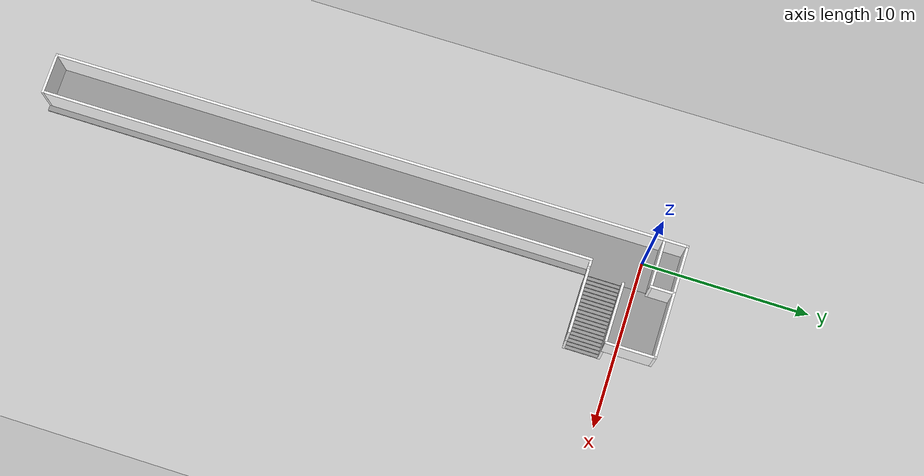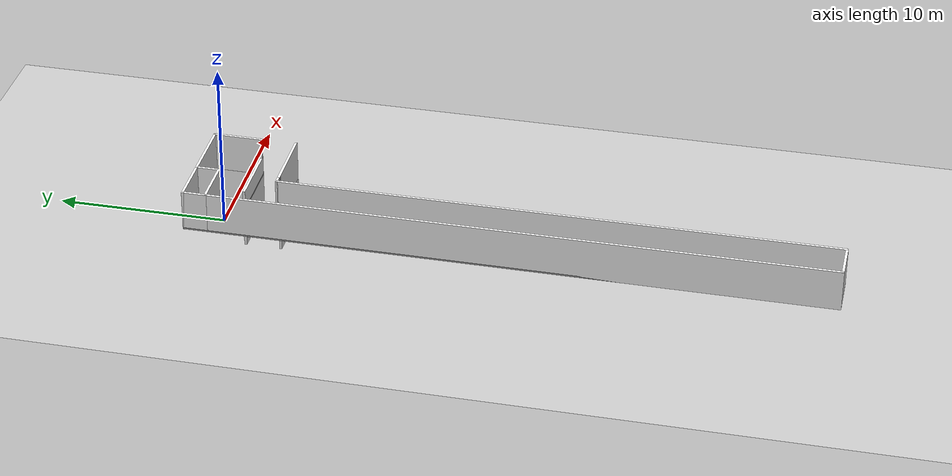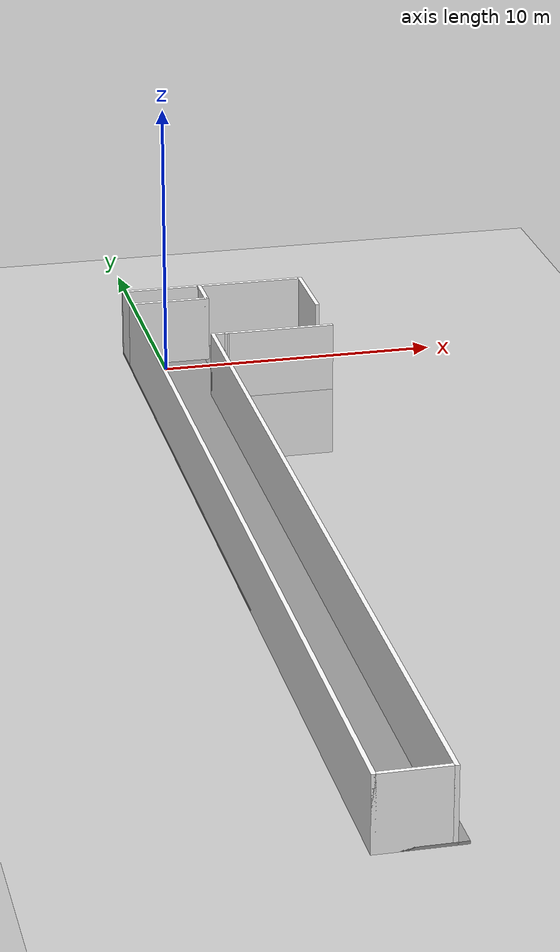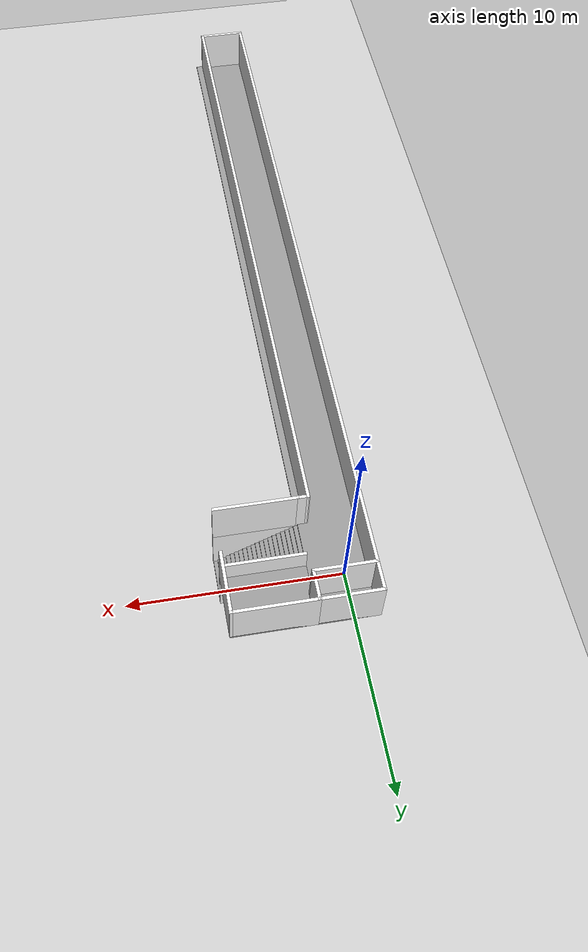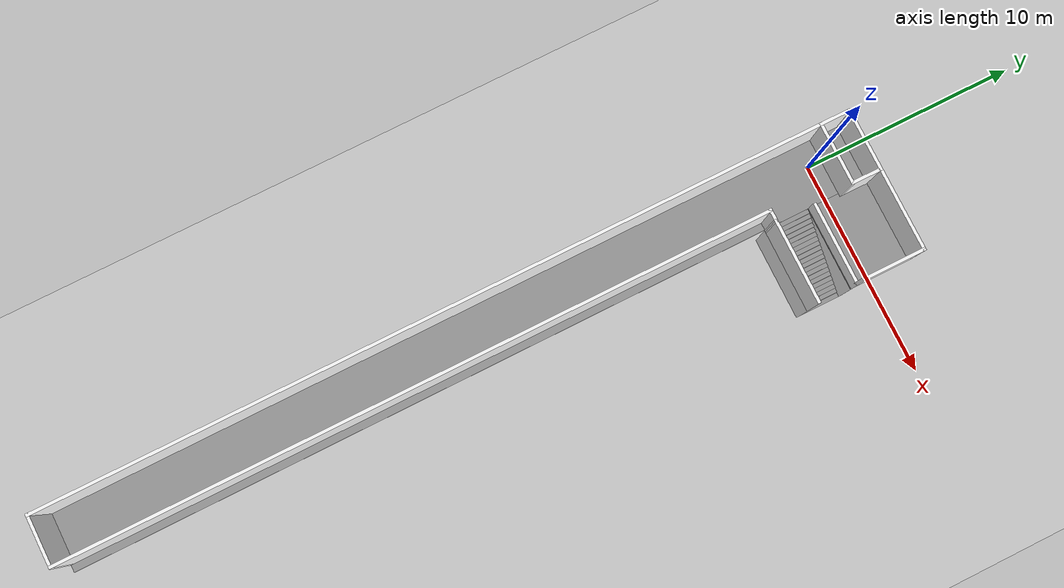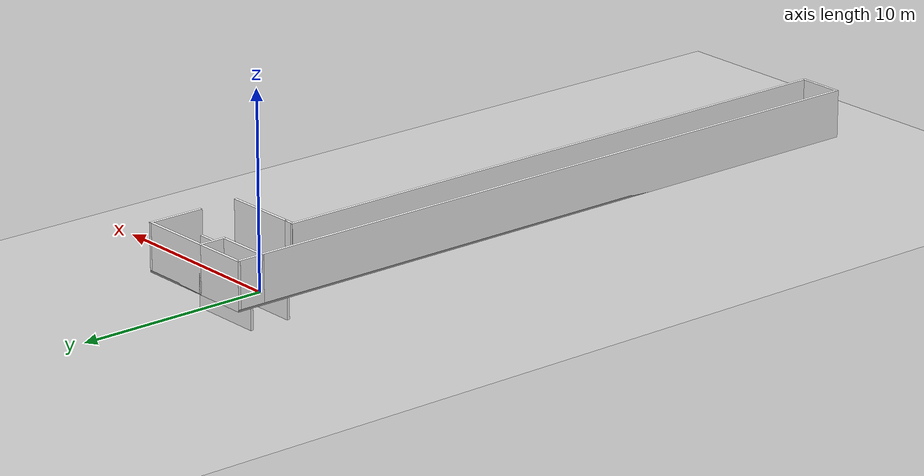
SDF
<sdf version='1.4'>
  <world name='default'>
    <!-- A global light source -->
    <include>
      <uri>model://sun</uri>
    </include>

    <!-- A ground plane -->
    <include>
      <uri>model://ground_plane</uri>
        <pose>0 0 -2.6 0 0 0</pose>
    </include>

    <physics type="ode">
      <real_time_update_rate>1000.0</real_time_update_rate>
      <max_step_size>0.001</max_step_size>
      <real_time_factor>1</real_time_factor>
      <ode>
        <solver>
          <type>quick</type>
          <iters>150</iters>
          <precon_iters>0</precon_iters>
          <sor>1.400000</sor>
          <use_dynamic_moi_rescaling>1</use_dynamic_moi_rescaling>
        </solver>
        <constraints>
          <cfm>0.00001</cfm>
          <erp>0.2</erp>
          <contact_max_correcting_vel>2000.000000</contact_max_correcting_vel>
          <contact_surface_layer>0.01000</contact_surface_layer>
        </constraints>
      </ode>
    </physics>

    <!-- Load world -->
    <include>
      <uri>model://Building7_4th_Floor</uri>
        <pose>2.2 -17 -2.6 0 0 0</pose>
    </include>

    <scene>
      <ambient>0.4 0.4 0.4 1</ambient>
      <background>0.7 0.7 0.7 1</background>
      <shadows>true</shadows>
    </scene>

    <gui fullscreen='1'>
      <camera name='user_camera'>
        <pose>0 -3 8 0 1.5708 0</pose>
        <view_controller>orbit</view_controller>
      </camera>
    </gui>
  </world>
</sdf>

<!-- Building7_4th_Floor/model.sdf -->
<sdf version='1.7'>
  <model name='Building7_4th_Floor'>
    <pose>0 0 0 0 0 0</pose>
    <link name='Wall_1'>
      <collision name='Wall_1_Collision'>
        <geometry>
          <box>
            <size>37 0.15 2.5</size>
          </box>
        </geometry>
        <pose>0 0 1.25 0 -0 0</pose>
      </collision>
      <visual name='Wall_1_Visual'>
        <pose>0 0 1.25 0 -0 0</pose>
        <geometry>
          <box>
            <size>37 0.15 2.5</size>
          </box>
        </geometry>
        <material>
			 <script>
            <name>Wand_beige</name>
          </script>
          <ambient>1 1 1 1</ambient>
        </material>
        <meta>
          <layer>1</layer>
        </meta>
      </visual>
      <pose>-3.35009 -0.675 2.5 0 -0 -1.5708</pose>
    </link>
    <link name='Wall_2'>
      <collision name='Wall_2_Collision'>
        <geometry>
          <box>
            <size>2.5 0.15 2.5</size>
          </box>
        </geometry>
        <pose>0 0 1.25 0 -0 0</pose>
      </collision>
      <visual name='Wall_2_Visual'>
        <pose>0 0 1.25 0 -0 0</pose>
        <geometry>
          <box>
            <size>2.5 0.15 2.5</size>
          </box>
        </geometry>
        <material>
          <script>
            <name>Wand_beige</name>
          </script>
          <ambient>1 1 1 1</ambient>
        </material>
        <meta>
          <layer>1</layer>
        </meta>
      </visual>
      <pose>-2.17509 -19.1 2.5 0 -0 0</pose>
    </link>
    <link name='Wall_3'>
      <collision name='Wall_3_Collision'>
        <geometry>
          <box>
            <size>33.341 0.15 2.5</size>
          </box>
        </geometry>
        <pose>0 0 1.25 0 -0 0</pose>
      </collision>
      <visual name='Wall_3_Visual'>
        <pose>0 0 1.25 0 -0 0</pose>
        <geometry>
          <box>
            <size>33.341 0.15 2.5</size>
          </box>
        </geometry>
        <material>
          <script>
            <name>Wand_beige</name>
          </script>
          <ambient>1 1 1 1</ambient>
        </material>
        <meta>
          <layer>1</layer>
        </meta>
      </visual>
      <pose>-1.00009 -2.5045 2.5 0 -0 -1.5708</pose>
    </link>
    <link name='Wall_4'>
      <collision name='Wall_4_Collision'>
        <geometry>
          <box>
            <size>0.65 0.15 2.5</size>
          </box>
        </geometry>
        <pose>0 0 1.25 0 -0 0</pose>
      </collision>
      <visual name='Wall_4_Visual'>
        <pose>0 0 1.25 0 -0 0</pose>
        <geometry>
          <box>
            <size>0.65 0.15 2.5</size>
          </box>
        </geometry>
        <material>
          <script>
            <name>Wand_beige</name>
          </script>
          <ambient>1 1 1 1</ambient>
        </material>
        <meta>
          <layer>1</layer>
        </meta>
      </visual>
      <pose>-0.749999 14.0908 2.5 0 -0 3.14087</pose>
    </link>
    <link name='Wall_5'>
      <collision name='Wall_5_Collision'>
        <geometry>
          <box>
            <size>4 0.15 1.2</size>
          </box>
        </geometry>
        <pose>0 0 0.6 0 -0 0</pose>
      </collision>
      <visual name='Wall_5_Visual'>
        <pose>0 0 0.6 0 -0 0</pose>
        <geometry>
          <box>
            <size>4 0.15 1.2</size>
          </box>
        </geometry>
        <material>
          <script>
            <name>Wand_beige</name>
          </script>
          <ambient>1 1 1 1</ambient>
        </material>
        <meta>
          <layer>1</layer>
        </meta>
      </visual>
      <pose>1.42491 16.25 2.5 0 -0 0</pose>
    </link>
    <link name='Wall_6'>
      <collision name='Wall_6_Collision'>
        <geometry>
          <box>
            <size>3 0.15 2.5</size>
          </box>
        </geometry>
        <pose>0 0 1.25 0 -0 0</pose>
      </collision>
      <visual name='Wall_6_Visual'>
        <pose>0 0 1.25 0 -0 0</pose>
        <geometry>
          <box>
            <size>3 0.15 2.5</size>
          </box>
        </geometry>
        <material>
          <script>
            <name>Wand_beige</name>
          </script>
          <ambient>1 1 1 1</ambient>
        </material>
        <meta>
          <layer>1</layer>
        </meta>
      </visual>
      <pose>3.34991 17.675 2.5 0 -0 1.5708</pose>
    </link>
    <link name='Wall_7'>
      <collision name='Wall_7_Collision'>
        <geometry>
          <box>
            <size>4 0.15 2.5</size>
          </box>
        </geometry>
        <pose>0 0 1.25 0 -0 0</pose>
      </collision>
      <visual name='Wall_7_Visual'>
        <pose>0 0 1.25 0 -0 0</pose>
        <geometry>
          <box>
            <size>4 0.15 2.5</size>
          </box>
        </geometry>
        <material>
          <script>
            <name>Wand_beige</name>
          </script>
          <ambient>1 1 1 1</ambient>
        </material>
        <meta>
          <layer>1</layer>
        </meta>
      </visual>
      <pose>1.42491 19.1 2.5 0 -0 3.14159</pose>
    </link>
    <link name='Wall_8'>
      <collision name='Wall_8_Collision'>
        <geometry>
          <box>
            <size>1.5 0.15 2.5</size>
          </box>
        </geometry>
        <pose>0 0 1.25 0 -0 0</pose>
      </collision>
      <visual name='Wall_8_Visual'>
        <pose>0 0 1.25 0 -0 0</pose>
        <geometry>
          <box>
            <size>1.5 0.15 2.5</size>
          </box>
        </geometry>
        <material>
          <script>
            <name>Wand_beige</name>
          </script>
          <ambient>1 1 1 1</ambient>
        </material>
        <meta>
          <layer>1</layer>
        </meta>
      </visual>
      <pose>-0.500093 18.425 2.5 0 -0 -1.5708</pose>
    </link>
    <link name='Wall_9'>
      <collision name='Wall_9_Collision'>
        <geometry>
          <box>
            <size>3 0.15 2.5</size>
          </box>
        </geometry>
        <pose>0 0 1.25 0 -0 0</pose>
      </collision>
      <visual name='Wall_9_Visual'>
        <pose>0 0 1.25 0 -0 0</pose>
        <geometry>
          <box>
            <size>3 0.15 2.5</size>
          </box>
        </geometry>
        <material>
          <script>
            <name>Wand_beige</name>
          </script>
          <ambient>1 1 1 1</ambient>
        </material>
        <meta>
          <layer>1</layer>
        </meta>
      </visual>
      <pose>-1.92509 17.75 2.5 0 -0 3.14159</pose>
    </link>
    <link name='Floor_0'>
      <pose>-9e-05 1e-06 2.5 0 -0 0</pose>
      <visual name='Floor_0_Visual_0'>
        <pose>-2.0038 0 0.05 0 -0 0</pose>
        <geometry>
          <box>
            <size>2.84242 38.35 0.1</size>
          </box>
        </geometry>
        <material>
          <script>
            <uri>file://media/materials/scripts/gazebo.material</uri>
            <name>Gazebo/Grey</name>
          </script>
          <ambient>1 1 1 1</ambient>
        </material>
        <meta>
          <layer>1</layer>
        </meta>
      </visual>
      <collision name='Floor_0_Collision_0'>
        <geometry>
          <box>
            <size>2.84242 38.35 0.1</size>
          </box>
        </geometry>
        <pose>-2.0038 0 0.05 0 -0 0</pose>
      </collision>
      <visual name='Floor_0_Visual_3'>
        <pose>1.41741 17.673 0.05 0 -0 0</pose>
        <geometry>
          <box>
            <size>4 3.004 0.1</size>
          </box>
        </geometry>
        <material>
          <script>
            <uri>file://media/materials/scripts/gazebo.material</uri>
            <name>Gazebo/Grey</name>
          </script>
          <ambient>1 1 1 1</ambient>
        </material>
        <meta>
          <layer>1</layer>
        </meta>
      </visual>
      <collision name='Floor_0_Collision_3'>
        <geometry>
          <box>
            <size>4 3.004 0.1</size>
          </box>
        </geometry>
        <pose>1.41741 17.673 0.05 0 -0 0</pose>
      </collision>
    </link>
    <link name='Stairs_3'>
      <visual name='Stairs_3_Visual_0'>
        <pose>3.31732 15.171 0.0625 0 0 -1.5708</pose>
        <geometry>
          <box>
            <size>2 0.2 0.125</size>
          </box>
        </geometry>
        <material>
          <script>
            <uri>file://media/materials/scripts/gazebo.material</uri>
            <name>Gazebo/Grey</name>
          </script>
          <ambient>1 1 1 1</ambient>
        </material>
        <meta>
          <layer>0</layer>
        </meta>
      </visual>
      <collision name='Stairs_3_Collision_0'>
        <geometry>
          <box>
            <size>2 0.2 0.125</size>
          </box>
        </geometry>
        <pose>3.31732 15.171 0.0625 0 0 -1.5708</pose>
      </collision>
      <visual name='Stairs_3_Visual_1'>
        <pose>3.11732 15.171 0.1875 0 0 -1.5708</pose>
        <geometry>
          <box>
            <size>2 0.2 0.125</size>
          </box>
        </geometry>
        <material>
          <script>
            <uri>file://media/materials/scripts/gazebo.material</uri>
            <name>Gazebo/Grey</name>
          </script>
          <ambient>1 1 1 1</ambient>
        </material>
        <meta>
          <layer>0</layer>
        </meta>
      </visual>
      <collision name='Stairs_3_Collision_1'>
        <geometry>
          <box>
            <size>2 0.2 0.125</size>
          </box>
        </geometry>
        <pose>3.11732 15.171 0.1875 0 0 -1.5708</pose>
      </collision>
      <visual name='Stairs_3_Visual_2'>
        <pose>2.91732 15.171 0.3125 0 0 -1.5708</pose>
        <geometry>
          <box>
            <size>2 0.2 0.125</size>
          </box>
        </geometry>
        <material>
          <script>
            <uri>file://media/materials/scripts/gazebo.material</uri>
            <name>Gazebo/Grey</name>
          </script>
          <ambient>1 1 1 1</ambient>
        </material>
        <meta>
          <layer>0</layer>
        </meta>
      </visual>
      <collision name='Stairs_3_Collision_2'>
        <geometry>
          <box>
            <size>2 0.2 0.125</size>
          </box>
        </geometry>
        <pose>2.91732 15.171 0.3125 0 0 -1.5708</pose>
      </collision>
      <visual name='Stairs_3_Visual_3'>
        <pose>2.71732 15.171 0.4375 0 0 -1.5708</pose>
        <geometry>
          <box>
            <size>2 0.2 0.125</size>
          </box>
        </geometry>
        <material>
          <script>
            <uri>file://media/materials/scripts/gazebo.material</uri>
            <name>Gazebo/Grey</name>
          </script>
          <ambient>1 1 1 1</ambient>
        </material>
        <meta>
          <layer>0</layer>
        </meta>
      </visual>
      <collision name='Stairs_3_Collision_3'>
        <geometry>
          <box>
            <size>2 0.2 0.125</size>
          </box>
        </geometry>
        <pose>2.71732 15.171 0.4375 0 0 -1.5708</pose>
      </collision>
      <visual name='Stairs_3_Visual_4'>
        <pose>2.51732 15.171 0.5625 0 0 -1.5708</pose>
        <geometry>
          <box>
            <size>2 0.2 0.125</size>
          </box>
        </geometry>
        <material>
          <script>
            <uri>file://media/materials/scripts/gazebo.material</uri>
            <name>Gazebo/Grey</name>
          </script>
          <ambient>1 1 1 1</ambient>
        </material>
        <meta>
          <layer>0</layer>
        </meta>
      </visual>
      <collision name='Stairs_3_Collision_4'>
        <geometry>
          <box>
            <size>2 0.2 0.125</size>
          </box>
        </geometry>
        <pose>2.51732 15.171 0.5625 0 0 -1.5708</pose>
      </collision>
      <visual name='Stairs_3_Visual_5'>
        <pose>2.31732 15.171 0.6875 0 0 -1.5708</pose>
        <geometry>
          <box>
            <size>2 0.2 0.125</size>
          </box>
        </geometry>
        <material>
          <script>
            <uri>file://media/materials/scripts/gazebo.material</uri>
            <name>Gazebo/Grey</name>
          </script>
          <ambient>1 1 1 1</ambient>
        </material>
        <meta>
          <layer>0</layer>
        </meta>
      </visual>
      <collision name='Stairs_3_Collision_5'>
        <geometry>
          <box>
            <size>2 0.2 0.125</size>
          </box>
        </geometry>
        <pose>2.31732 15.171 0.6875 0 0 -1.5708</pose>
      </collision>
      <visual name='Stairs_3_Visual_6'>
        <pose>2.11732 15.171 0.8125 0 0 -1.5708</pose>
        <geometry>
          <box>
            <size>2 0.2 0.125</size>
          </box>
        </geometry>
        <material>
          <script>
            <uri>file://media/materials/scripts/gazebo.material</uri>
            <name>Gazebo/Grey</name>
          </script>
          <ambient>1 1 1 1</ambient>
        </material>
        <meta>
          <layer>0</layer>
        </meta>
      </visual>
      <collision name='Stairs_3_Collision_6'>
        <geometry>
          <box>
            <size>2 0.2 0.125</size>
          </box>
        </geometry>
        <pose>2.11732 15.171 0.8125 0 0 -1.5708</pose>
      </collision>
      <visual name='Stairs_3_Visual_7'>
        <pose>1.91732 15.171 0.9375 0 0 -1.5708</pose>
        <geometry>
          <box>
            <size>2 0.2 0.125</size>
          </box>
        </geometry>
        <material>
          <script>
            <uri>file://media/materials/scripts/gazebo.material</uri>
            <name>Gazebo/Grey</name>
          </script>
          <ambient>1 1 1 1</ambient>
        </material>
        <meta>
          <layer>0</layer>
        </meta>
      </visual>
      <collision name='Stairs_3_Collision_7'>
        <geometry>
          <box>
            <size>2 0.2 0.125</size>
          </box>
        </geometry>
        <pose>1.91732 15.171 0.9375 0 0 -1.5708</pose>
      </collision>
      <visual name='Stairs_3_Visual_8'>
        <pose>1.71732 15.171 1.0625 0 0 -1.5708</pose>
        <geometry>
          <box>
            <size>2 0.2 0.125</size>
          </box>
        </geometry>
        <material>
          <script>
            <uri>file://media/materials/scripts/gazebo.material</uri>
            <name>Gazebo/Grey</name>
          </script>
          <ambient>1 1 1 1</ambient>
        </material>
        <meta>
          <layer>0</layer>
        </meta>
      </visual>
      <collision name='Stairs_3_Collision_8'>
        <geometry>
          <box>
            <size>2 0.2 0.125</size>
          </box>
        </geometry>
        <pose>1.71732 15.171 1.0625 0 0 -1.5708</pose>
      </collision>
      <visual name='Stairs_3_Visual_9'>
        <pose>1.51732 15.171 1.1875 0 0 -1.5708</pose>
        <geometry>
          <box>
            <size>2 0.2 0.125</size>
          </box>
        </geometry>
        <material>
          <script>
            <uri>file://media/materials/scripts/gazebo.material</uri>
            <name>Gazebo/Grey</name>
          </script>
          <ambient>1 1 1 1</ambient>
        </material>
        <meta>
          <layer>0</layer>
        </meta>
      </visual>
      <collision name='Stairs_3_Collision_9'>
        <geometry>
          <box>
            <size>2 0.2 0.125</size>
          </box>
        </geometry>
        <pose>1.51732 15.171 1.1875 0 0 -1.5708</pose>
      </collision>
      <visual name='Stairs_3_Visual_10'>
        <pose>1.31732 15.171 1.3125 0 0 -1.5708</pose>
        <geometry>
          <box>
            <size>2 0.2 0.125</size>
          </box>
        </geometry>
        <material>
          <script>
            <uri>file://media/materials/scripts/gazebo.material</uri>
            <name>Gazebo/Grey</name>
          </script>
          <ambient>1 1 1 1</ambient>
        </material>
        <meta>
          <layer>0</layer>
        </meta>
      </visual>
      <collision name='Stairs_3_Collision_10'>
        <geometry>
          <box>
            <size>2 0.2 0.125</size>
          </box>
        </geometry>
        <pose>1.31732 15.171 1.3125 0 0 -1.5708</pose>
      </collision>
      <visual name='Stairs_3_Visual_11'>
        <pose>1.11732 15.171 1.4375 0 0 -1.5708</pose>
        <geometry>
          <box>
            <size>2 0.2 0.125</size>
          </box>
        </geometry>
        <material>
          <script>
            <uri>file://media/materials/scripts/gazebo.material</uri>
            <name>Gazebo/Grey</name>
          </script>
          <ambient>1 1 1 1</ambient>
        </material>
        <meta>
          <layer>0</layer>
        </meta>
      </visual>
      <collision name='Stairs_3_Collision_11'>
        <geometry>
          <box>
            <size>2 0.2 0.125</size>
          </box>
        </geometry>
        <pose>1.11732 15.171 1.4375 0 0 -1.5708</pose>
      </collision>
      <visual name='Stairs_3_Visual_12'>
        <pose>0.917324 15.171 1.5625 0 0 -1.5708</pose>
        <geometry>
          <box>
            <size>2 0.2 0.125</size>
          </box>
        </geometry>
        <material>
          <script>
            <uri>file://media/materials/scripts/gazebo.material</uri>
            <name>Gazebo/Grey</name>
          </script>
          <ambient>1 1 1 1</ambient>
        </material>
        <meta>
          <layer>0</layer>
        </meta>
      </visual>
      <collision name='Stairs_3_Collision_12'>
        <geometry>
          <box>
            <size>2 0.2 0.125</size>
          </box>
        </geometry>
        <pose>0.917324 15.171 1.5625 0 0 -1.5708</pose>
      </collision>
      <visual name='Stairs_3_Visual_13'>
        <pose>0.717324 15.171 1.6875 0 0 -1.5708</pose>
        <geometry>
          <box>
            <size>2 0.2 0.125</size>
          </box>
        </geometry>
        <material>
          <script>
            <uri>file://media/materials/scripts/gazebo.material</uri>
            <name>Gazebo/Grey</name>
          </script>
          <ambient>1 1 1 1</ambient>
        </material>
        <meta>
          <layer>0</layer>
        </meta>
      </visual>
      <collision name='Stairs_3_Collision_13'>
        <geometry>
          <box>
            <size>2 0.2 0.125</size>
          </box>
        </geometry>
        <pose>0.717324 15.171 1.6875 0 0 -1.5708</pose>
      </collision>
      <visual name='Stairs_3_Visual_14'>
        <pose>0.517324 15.171 1.8125 0 0 -1.5708</pose>
        <geometry>
          <box>
            <size>2 0.2 0.125</size>
          </box>
        </geometry>
        <material>
          <script>
            <uri>file://media/materials/scripts/gazebo.material</uri>
            <name>Gazebo/Grey</name>
          </script>
          <ambient>1 1 1 1</ambient>
        </material>
        <meta>
          <layer>0</layer>
        </meta>
      </visual>
      <collision name='Stairs_3_Collision_14'>
        <geometry>
          <box>
            <size>2 0.2 0.125</size>
          </box>
        </geometry>
        <pose>0.517324 15.171 1.8125 0 0 -1.5708</pose>
      </collision>
      <visual name='Stairs_3_Visual_15'>
        <pose>0.317324 15.171 1.9375 0 0 -1.5708</pose>
        <geometry>
          <box>
            <size>2 0.2 0.125</size>
          </box>
        </geometry>
        <material>
          <script>
            <uri>file://media/materials/scripts/gazebo.material</uri>
            <name>Gazebo/Grey</name>
          </script>
          <ambient>1 1 1 1</ambient>
        </material>
        <meta>
          <layer>0</layer>
        </meta>
      </visual>
      <collision name='Stairs_3_Collision_15'>
        <geometry>
          <box>
            <size>2 0.2 0.125</size>
          </box>
        </geometry>
        <pose>0.317324 15.171 1.9375 0 0 -1.5708</pose>
      </collision>
      <visual name='Stairs_3_Visual_16'>
        <pose>0.117324 15.171 2.0625 0 0 -1.5708</pose>
        <geometry>
          <box>
            <size>2 0.2 0.125</size>
          </box>
        </geometry>
        <material>
          <script>
            <uri>file://media/materials/scripts/gazebo.material</uri>
            <name>Gazebo/Grey</name>
          </script>
          <ambient>1 1 1 1</ambient>
        </material>
        <meta>
          <layer>0</layer>
        </meta>
      </visual>
      <collision name='Stairs_3_Collision_16'>
        <geometry>
          <box>
            <size>2 0.2 0.125</size>
          </box>
        </geometry>
        <pose>0.117324 15.171 2.0625 0 0 -1.5708</pose>
      </collision>
      <visual name='Stairs_3_Visual_17'>
        <pose>-0.082676 15.171 2.1875 0 0 -1.5708</pose>
        <geometry>
          <box>
            <size>2 0.2 0.125</size>
          </box>
        </geometry>
        <material>
          <script>
            <uri>file://media/materials/scripts/gazebo.material</uri>
            <name>Gazebo/Grey</name>
          </script>
          <ambient>1 1 1 1</ambient>
        </material>
        <meta>
          <layer>0</layer>
        </meta>
      </visual>
      <collision name='Stairs_3_Collision_17'>
        <geometry>
          <box>
            <size>2 0.2 0.125</size>
          </box>
        </geometry>
        <pose>-0.082676 15.171 2.1875 0 0 -1.5708</pose>
      </collision>
      <visual name='Stairs_3_Visual_18'>
        <pose>-0.282676 15.171 2.3125 0 0 -1.5708</pose>
        <geometry>
          <box>
            <size>2 0.2 0.125</size>
          </box>
        </geometry>
        <material>
          <script>
            <uri>file://media/materials/scripts/gazebo.material</uri>
            <name>Gazebo/Grey</name>
          </script>
          <ambient>1 1 1 1</ambient>
        </material>
        <meta>
          <layer>0</layer>
        </meta>
      </visual>
      <collision name='Stairs_3_Collision_18'>
        <geometry>
          <box>
            <size>2 0.2 0.125</size>
          </box>
        </geometry>
        <pose>-0.282676 15.171 2.3125 0 0 -1.5708</pose>
      </collision>
      <visual name='Stairs_3_Visual_19'>
        <pose>-0.482676 15.171 2.4375 0 0 -1.5708</pose>
        <geometry>
          <box>
            <size>2 0.2 0.125</size>
          </box>
        </geometry>
        <material>
          <script>
            <uri>file://media/materials/scripts/gazebo.material</uri>
            <name>Gazebo/Grey</name>
          </script>
          <ambient>1 1 1 1</ambient>
        </material>
        <meta>
          <layer>0</layer>
        </meta>
      </visual>
      <collision name='Stairs_3_Collision_19'>
        <geometry>
          <box>
            <size>2 0.2 0.125</size>
          </box>
        </geometry>
        <pose>-0.482676 15.171 2.4375 0 0 -1.5708</pose>
      </collision>
    </link>
    <link name='Wall_91'>
      <collision name='Wall_91_Collision'>
        <geometry>
          <box>
            <size>4 0.15 2.5</size>
          </box>
        </geometry>
        <pose>0 0 1.25 0 -0 0</pose>
      </collision>
      <visual name='Wall_91_Visual'>
        <pose>0 0 1.25 0 -0 0</pose>
        <geometry>
          <box>
            <size>4 0.15 2.5</size>
          </box>
        </geometry>
        <material>
          <script>
            <name>Wand_beige</name>
          </script>
          <ambient>1 1 1 1</ambient>
        </material>
        <meta>
          <layer>0</layer>
        </meta>
      </visual>
      <pose>1.4251 16.2503 0 0 -0 0</pose>
    </link>
    <link name='Wall_92'>
      <collision name='Wall_92_Collision'>
        <geometry>
          <box>
            <size>4 0.15 2.5</size>
          </box>
        </geometry>
        <pose>0 0 1.25 0 -0 0</pose>
      </collision>
      <visual name='Wall_92_Visual'>
        <pose>0 0 1.25 0 -0 0</pose>
        <geometry>
          <box>
            <size>4 0.15 2.5</size>
          </box>
        </geometry>
        <material>
          <script>
            <name>Wand_beige</name>
          </script>
          <ambient>1 1 1 1</ambient>
        </material>
        <meta>
          <layer>0</layer>
        </meta>
      </visual>
      <pose>1.4251 14.0906 0 0 -0 0</pose>
    </link>
    <link name='Wall_30'>
      <collision name='Wall_30_Collision'>
        <geometry>
          <box>
            <size>3 0.15 2.5</size>
          </box>
        </geometry>
        <pose>0 0 1.25 0 -0 0</pose>
      </collision>
      <visual name='Wall_30_Visual'>
        <pose>0 0 1.25 0 -0 0</pose>
        <geometry>
          <box>
            <size>3 0.15 2.5</size>
          </box>
        </geometry>
        <material>
          <script>
            <name>Wand_beige</name>
          </script>
          <ambient>1 1 1 1</ambient>
        </material>
        <meta>
          <layer>1</layer>
        </meta>
      </visual>
      <pose>-1.92509 19.1 2.5 0 -0 3.14159</pose>
    </link>
    <link name='Wall_35'>
      <collision name='Wall_35_Collision'>
        <geometry>
          <box>
            <size>1.5 0.15 2.5</size>
          </box>
        </geometry>
        <pose>0 0 1.25 0 -0 0</pose>
      </collision>
      <visual name='Wall_35_Visual'>
        <pose>0 0 1.25 0 -0 0</pose>
        <geometry>
          <box>
            <size>1.5 0.15 2.5</size>
          </box>
        </geometry>
        <material>
          <script>
            <name>Wand_beige</name>
          </script>
          <ambient>1 1 1 1</ambient>
        </material>
        <meta>
          <layer>1</layer>
        </meta>
      </visual>
      <pose>-3.35009 18.425 2.5 0 -0 -1.5708</pose>
    </link>
    <link name='Wall_93'>
      <collision name='Wall_93_Collision'>
        <geometry>
          <box>
            <size>4 0.15 2.5</size>
          </box>
        </geometry>
        <pose>0 0 1.25 0 -0 0</pose>
      </collision>
      <visual name='Wall_93_Visual'>
        <pose>0 0 1.25 0 -0 0</pose>
        <geometry>
          <box>
            <size>4 0.15 2.5</size>
          </box>
        </geometry>
        <material>
          <script>
            <name>Wand_beige</name>
          </script>
          <ambient>1 1 1 1</ambient>
        </material>
        <meta>
          <layer>1</layer>
        </meta>
      </visual>
      <pose>1.425 14.0908 2.5 0 -0 9.3e-05</pose>
    </link>
    <static>1</static>
  </model>
</sdf>
